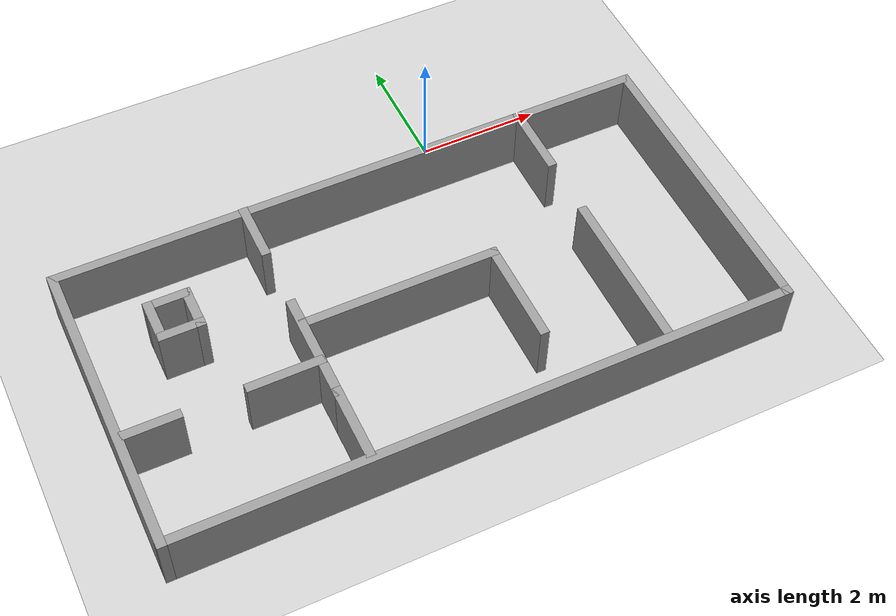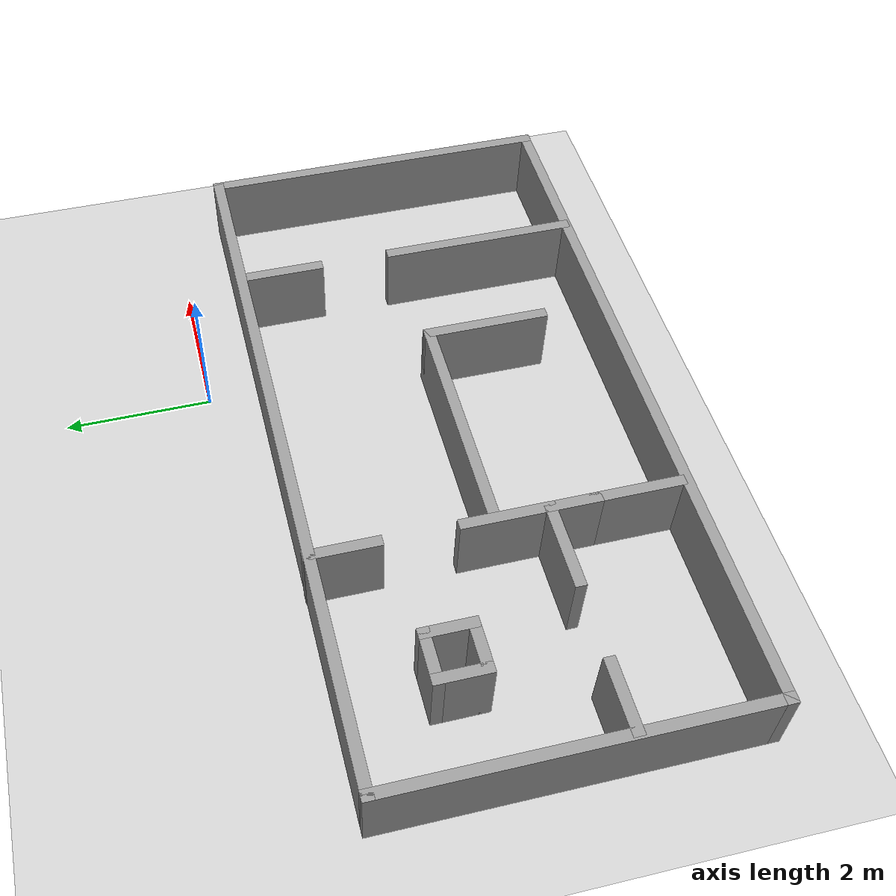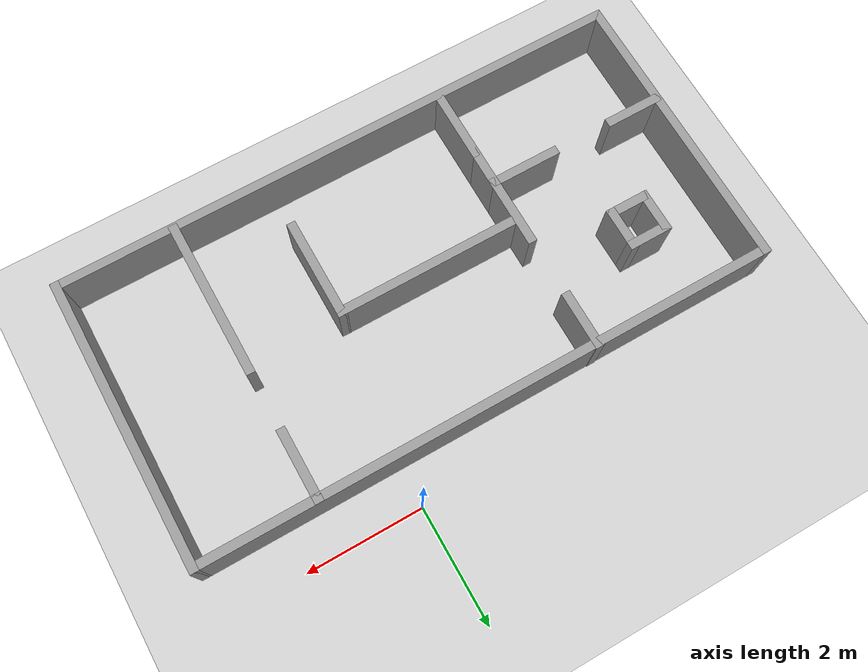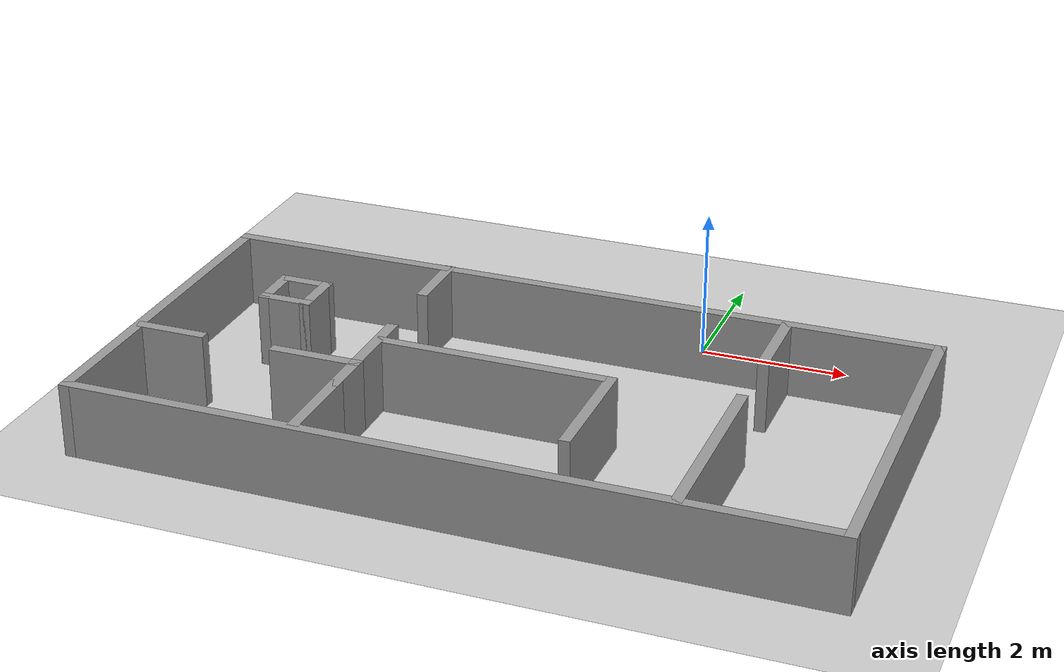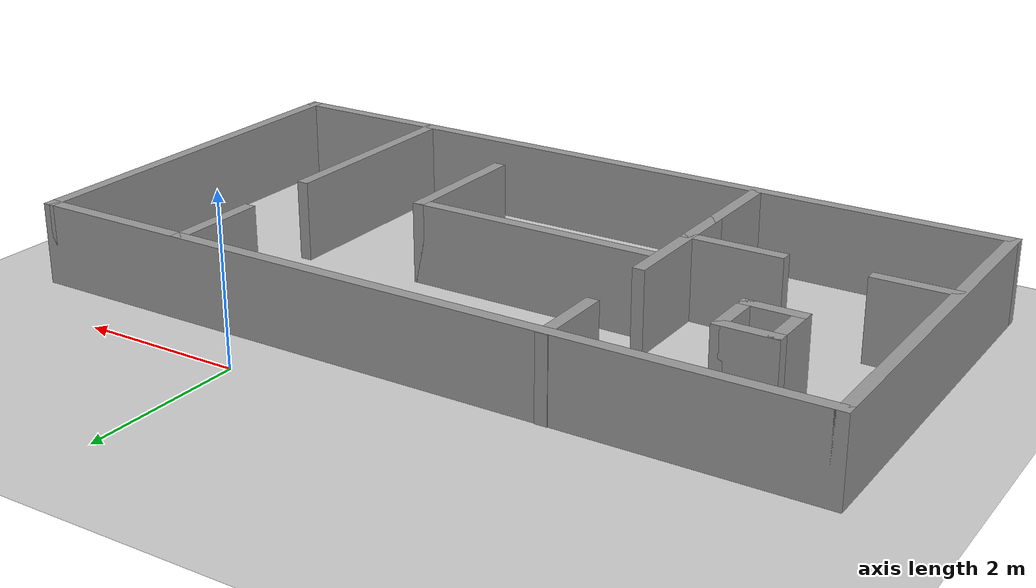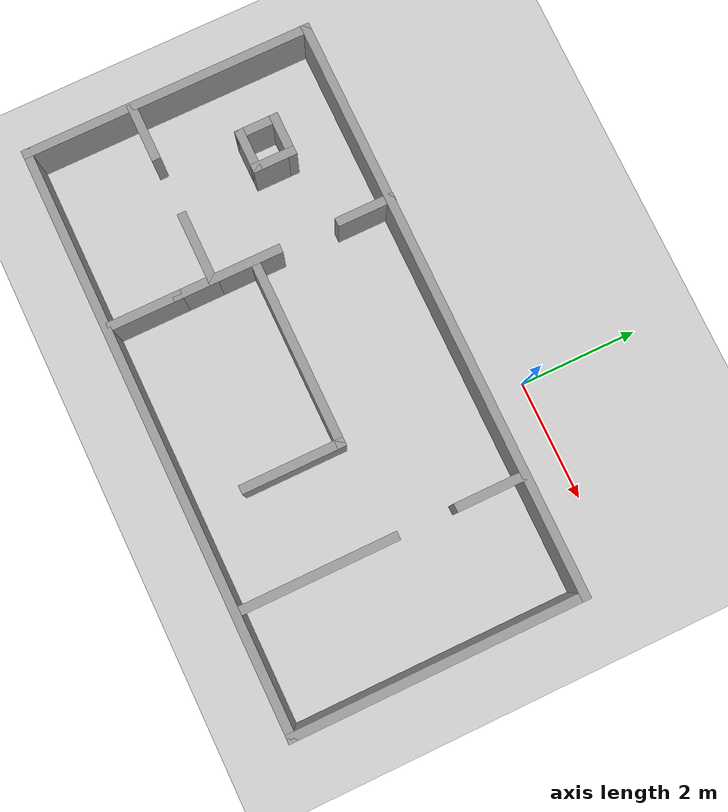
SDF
<sdf version="1.7">
 <world name="default">
  <light name="sun" type="directional">
   <pose>0 0 10 0 -0 0</pose>
   <diffuse>0.8 0.8 0.8 1</diffuse>
   <specular>0.2 0.2 0.2 1</specular>
   <attenuation>
    <range>1000</range>
    <constant>0.9</constant>
    <linear>0.01</linear>
    <quadratic>0.001</quadratic>
   </attenuation>
   <direction>-0.5 0.1 -0.9</direction>
   <spot><inner_angle>0</inner_angle><outer_angle>0</outer_angle><falloff>0</falloff></spot>
  </light>
  <model name="ground_plane">
   <static>1</static>
   <link name="link">
    <collision name="collision">
     <geometry><plane><normal>0 0 1</normal><size>100 100</size></plane></geometry>
     <surface>
      <contact><collide_bitmask>65535</collide_bitmask></contact>
      <friction><ode><mu>100</mu><mu2>50</mu2></ode></friction>
     </surface>
    </collision>
    <visual name="visual">
     <cast_shadows>0</cast_shadows>
     <geometry><plane><normal>0 0 1</normal><size>100 100</size></plane></geometry>
     <material>
      <script><uri>file://media/materials/scripts/gazebo.material</uri><name>Gazebo/Grey</name></script>
     </material>
    </visual>
   </link>
  </model>
  <gravity>0 0 -9.8</gravity>
  <magnetic_field>6e-06 2.3e-05 -4.2e-05</magnetic_field>
  <atmosphere type="adiabatic"/>
  <physics type="ode">
   <max_step_size>0.001</max_step_size>
   <real_time_factor>1</real_time_factor>
   <real_time_update_rate>1000</real_time_update_rate>
  </physics>
  <scene><ambient>0.4 0.4 0.4 1</ambient><background>0.7 0.7 0.7 1</background><shadows>1</shadows></scene>
  <audio><device>default</device></audio>
  <spherical_coordinates>
   <surface_model>EARTH_WGS84</surface_model>
   <latitude_deg>0</latitude_deg>
   <longitude_deg>0</longitude_deg>
   <elevation>0</elevation>
   <heading_deg>0</heading_deg>
  </spherical_coordinates>
  <model name="P1keskkond">
   <pose>-1.605 -2.831 0 0 -0 0</pose>
   <link name="Wall_0">
    <collision name="Wall_0_Collision">
     <geometry><box><size>10 0.15 1</size></box></geometry>
     <pose>0 0 0.5 0 -0 0</pose>
    </collision>
    <visual name="Wall_0_Visual">
     <pose>0 0 0.5 0 -0 0</pose>
     <geometry><box><size>10 0.15 1</size></box></geometry>
     <material>
      <script><uri>file://media/materials/scripts/gazebo.material</uri><name>Gazebo/Grey</name></script>
      <ambient>1 1 1 1</ambient>
     </material>
     <meta><layer>0</layer></meta>
    </visual>
    <pose>0 2.081 0 0 -0 0</pose>
   </link>
   <link name="Wall_11">
    <collision name="Wall_11_Collision">
     <geometry><box><size>1 0.15 1</size></box></geometry>
     <pose>0 0 0.5 0 -0 0</pose>
    </collision>
    <visual name="Wall_11_Visual">
     <pose>0 0 0.5 0 -0 0</pose>
     <geometry><box><size>1 0.15 1</size></box></geometry>
     <material>
      <script><uri>file://media/materials/scripts/gazebo.material</uri><name>Gazebo/Grey</name></script>
      <ambient>1 1 1 1</ambient>
     </material>
     <meta><layer>0</layer></meta>
    </visual>
    <pose>-4.469 -0.96 0 0 -0 3.14159</pose>
   </link>
   <link name="Wall_13">
    <collision name="Wall_13_Collision">
     <geometry><box><size>0.75 0.15 1</size></box></geometry>
     <pose>0 0 0.5 0 -0 0</pose>
    </collision>
    <visual name="Wall_13_Visual">
     <pose>0 0 0.5 0 -0 0</pose>
     <geometry><box><size>0.75 0.15 1</size></box></geometry>
     <material>
      <script><uri>file://media/materials/scripts/gazebo.material</uri><name>Gazebo/Grey</name></script>
      <ambient>1 1 1 1</ambient>
     </material>
     <meta><layer>0</layer></meta>
    </visual>
    <pose>-1.844 -1.26 0 0 -0 -1.5708</pose>
   </link>
   <link name="Wall_14">
    <collision name="Wall_14_Collision">
     <geometry><box><size>1.25 0.15 1</size></box></geometry>
     <pose>0 0 0.5 0 -0 0</pose>
    </collision>
    <visual name="Wall_14_Visual">
     <pose>0 0 0.5 0 -0 0</pose>
     <geometry><box><size>1.25 0.15 1</size></box></geometry>
     <material>
      <script><uri>file://media/materials/scripts/gazebo.material</uri><name>Gazebo/Grey</name></script>
      <ambient>1 1 1 1</ambient>
     </material>
     <meta><layer>0</layer></meta>
    </visual>
    <pose>-1.844 -2.11 0 0 -0 -1.5708</pose>
   </link>
   <link name="Wall_16">
    <collision name="Wall_16_Collision">
     <geometry><box><size>3.25 0.15 1</size></box></geometry>
     <pose>0 0 0.5 0 -0 0</pose>
    </collision>
    <visual name="Wall_16_Visual">
     <pose>0 0 0.5 0 -0 0</pose>
     <geometry><box><size>3.25 0.15 1</size></box></geometry>
     <material>
      <script><uri>file://media/materials/scripts/gazebo.material</uri><name>Gazebo/Grey</name></script>
      <ambient>1 1 1 1</ambient>
     </material>
     <meta><layer>0</layer></meta>
    </visual>
    <pose>-0.254 -0.25 0 0 -0 0</pose>
   </link>
   <link name="Wall_17">
    <collision name="Wall_17_Collision">
     <geometry><box><size>1.75 0.15 1</size></box></geometry>
     <pose>0 0 0.5 0 -0 0</pose>
    </collision>
    <visual name="Wall_17_Visual">
     <pose>0 0 0.5 0 -0 0</pose>
     <geometry><box><size>1.75 0.15 1</size></box></geometry>
     <material>
      <script><uri>file://media/materials/scripts/gazebo.material</uri><name>Gazebo/Grey</name></script>
      <ambient>1 1 1 1</ambient>
     </material>
     <meta><layer>0</layer></meta>
    </visual>
    <pose>1.296 -1.05 0 0 -0 -1.5708</pose>
   </link>
   <link name="Wall_19">
    <collision name="Wall_19_Collision">
     <geometry><box><size>1.25 0.15 1</size></box></geometry>
     <pose>0 0 0.5 0 -0 0</pose>
    </collision>
    <visual name="Wall_19_Visual">
     <pose>0 0 0.5 0 -0 0</pose>
     <geometry><box><size>1.25 0.15 1</size></box></geometry>
     <material>
      <script><uri>file://media/materials/scripts/gazebo.material</uri><name>Gazebo/Grey</name></script>
      <ambient>1 1 1 1</ambient>
     </material>
     <meta><layer>0</layer></meta>
    </visual>
    <pose>2.93 1.527 0 0 -0 -1.5708</pose>
   </link>
   <link name="Wall_2">
    <collision name="Wall_2_Collision">
     <geometry><box><size>4.987 0.15 1</size></box></geometry>
     <pose>0 0 0.5 0 -0 0</pose>
    </collision>
    <visual name="Wall_2_Visual">
     <pose>0 0 0.5 0 -0 0</pose>
     <geometry><box><size>4.987 0.15 1</size></box></geometry>
     <material>
      <script><uri>file://media/materials/scripts/gazebo.material</uri><name>Gazebo/Grey</name></script>
      <ambient>1 1 1 1</ambient>
     </material>
     <meta><layer>0</layer></meta>
    </visual>
    <pose>4.925 -0.3375 0 0 -0 -1.5708</pose>
   </link>
   <link name="Wall_21">
    <collision name="Wall_21_Collision">
     <geometry><box><size>2.75 0.15 1</size></box></geometry>
     <pose>0 0 0.5 0 -0 0</pose>
    </collision>
    <visual name="Wall_21_Visual">
     <pose>0 0 0.5 0 -0 0</pose>
     <geometry><box><size>2.75 0.15 1</size></box></geometry>
     <material>
      <script><uri>file://media/materials/scripts/gazebo.material</uri><name>Gazebo/Grey</name></script>
      <ambient>1 1 1 1</ambient>
     </material>
     <meta><layer>0</layer></meta>
    </visual>
    <pose>2.93 -1.423 0 0 -0 -1.5708</pose>
   </link>
   <link name="Wall_23">
    <collision name="Wall_23_Collision">
     <geometry><box><size>0.75 0.15 1</size></box></geometry>
     <pose>0 0 0.5 0 -0 0</pose>
    </collision>
    <visual name="Wall_23_Visual">
     <pose>0 0 0.5 0 -0 0</pose>
     <geometry><box><size>0.75 0.15 1</size></box></geometry>
     <material>
      <script><uri>file://media/materials/scripts/gazebo.material</uri><name>Gazebo/Grey</name></script>
      <ambient>1 1 1 1</ambient>
     </material>
     <meta><layer>0</layer></meta>
    </visual>
    <pose>-3.788 0.706 0 0 -0 -1.5708</pose>
   </link>
   <link name="Wall_24">
    <collision name="Wall_24_Collision">
     <geometry><box><size>0.75 0.15 1</size></box></geometry>
     <pose>0 0 0.5 0 -0 0</pose>
    </collision>
    <visual name="Wall_24_Visual">
     <pose>0 0 0.5 0 -0 0</pose>
     <geometry><box><size>0.75 0.15 1</size></box></geometry>
     <material>
      <script><uri>file://media/materials/scripts/gazebo.material</uri><name>Gazebo/Grey</name></script>
      <ambient>1 1 1 1</ambient>
     </material>
     <meta><layer>0</layer></meta>
    </visual>
    <pose>-3.488 0.406 0 0 -0 0</pose>
   </link>
   <link name="Wall_25">
    <collision name="Wall_25_Collision">
     <geometry><box><size>0.75 0.15 1</size></box></geometry>
     <pose>0 0 0.5 0 -0 0</pose>
    </collision>
    <visual name="Wall_25_Visual">
     <pose>0 0 0.5 0 -0 0</pose>
     <geometry><box><size>0.75 0.15 1</size></box></geometry>
     <material>
      <script><uri>file://media/materials/scripts/gazebo.material</uri><name>Gazebo/Grey</name></script>
      <ambient>1 1 1 1</ambient>
     </material>
     <meta><layer>0</layer></meta>
    </visual>
    <pose>-3.188 0.706 0 0 -0 1.5708</pose>
   </link>
   <link name="Wall_26">
    <collision name="Wall_26_Collision">
     <geometry><box><size>0.75 0.15 1</size></box></geometry>
     <pose>0 0 0.5 0 -0 0</pose>
    </collision>
    <visual name="Wall_26_Visual">
     <pose>0 0 0.5 0 -0 0</pose>
     <geometry><box><size>0.75 0.15 1</size></box></geometry>
     <material>
      <script><uri>file://media/materials/scripts/gazebo.material</uri><name>Gazebo/Grey</name></script>
      <ambient>1 1 1 1</ambient>
     </material>
     <meta><layer>0</layer></meta>
    </visual>
    <pose>-3.488 1.006 0 0 -0 3.14159</pose>
   </link>
   <link name="Wall_3">
    <collision name="Wall_3_Collision">
     <geometry><box><size>10 0.15 1</size></box></geometry>
     <pose>0 0 0.5 0 -0 0</pose>
    </collision>
    <visual name="Wall_3_Visual">
     <pose>0 0 0.5 0 -0 0</pose>
     <geometry><box><size>10 0.15 1</size></box></geometry>
     <material>
      <script><uri>file://media/materials/scripts/gazebo.material</uri><name>Gazebo/Grey</name></script>
      <ambient>1 1 1 1</ambient>
     </material>
     <meta><layer>0</layer></meta>
    </visual>
    <pose>0 -2.756 0 0 -0 3.14159</pose>
   </link>
   <link name="Wall_4">
    <collision name="Wall_4_Collision">
     <geometry><box><size>4.987 0.15 1</size></box></geometry>
     <pose>0 0 0.5 0 -0 0</pose>
    </collision>
    <visual name="Wall_4_Visual">
     <pose>0 0 0.5 0 -0 0</pose>
     <geometry><box><size>4.987 0.15 1</size></box></geometry>
     <material>
      <script><uri>file://media/materials/scripts/gazebo.material</uri><name>Gazebo/Grey</name></script>
      <ambient>1 1 1 1</ambient>
     </material>
     <meta><layer>0</layer></meta>
    </visual>
    <pose>-4.925 -0.3375 0 0 -0 1.5708</pose>
   </link>
   <link name="Wall_6">
    <collision name="Wall_6_Collision">
     <geometry><box><size>1 0.15 1</size></box></geometry>
     <pose>0 0 0.5 0 -0 0</pose>
    </collision>
    <visual name="Wall_6_Visual">
     <pose>0 0 0.5 0 -0 0</pose>
     <geometry><box><size>1 0.15 1</size></box></geometry>
     <material>
      <script><uri>file://media/materials/scripts/gazebo.material</uri><name>Gazebo/Grey</name></script>
      <ambient>1 1 1 1</ambient>
     </material>
     <meta><layer>0</layer></meta>
    </visual>
    <pose>-1.844 1.665 0 0 -0 -1.5708</pose>
   </link>
   <link name="Wall_8">
    <collision name="Wall_8_Collision">
     <geometry><box><size>1.25 0.15 1</size></box></geometry>
     <pose>0 0 0.5 0 -0 0</pose>
    </collision>
    <visual name="Wall_8_Visual">
     <pose>0 0 0.5 0 -0 0</pose>
     <geometry><box><size>1.25 0.15 1</size></box></geometry>
     <material>
      <script><uri>file://media/materials/scripts/gazebo.material</uri><name>Gazebo/Grey</name></script>
      <ambient>1 1 1 1</ambient>
     </material>
     <meta><layer>0</layer></meta>
    </visual>
    <pose>-1.844 -0.41 0 0 -0 -1.5708</pose>
   </link>
   <link name="Wall_9">
    <collision name="Wall_9_Collision">
     <geometry><box><size>1.25 0.15 1</size></box></geometry>
     <pose>0 0 0.5 0 -0 0</pose>
    </collision>
    <visual name="Wall_9_Visual">
     <pose>0 0 0.5 0 -0 0</pose>
     <geometry><box><size>1.25 0.15 1</size></box></geometry>
     <material>
      <script><uri>file://media/materials/scripts/gazebo.material</uri><name>Gazebo/Grey</name></script>
      <ambient>1 1 1 1</ambient>
     </material>
     <meta><layer>0</layer></meta>
    </visual>
    <pose>-2.394 -0.96 0 0 -0 3.14159</pose>
   </link>
   <static>1</static>
  </model>
 </world>
</sdf>
